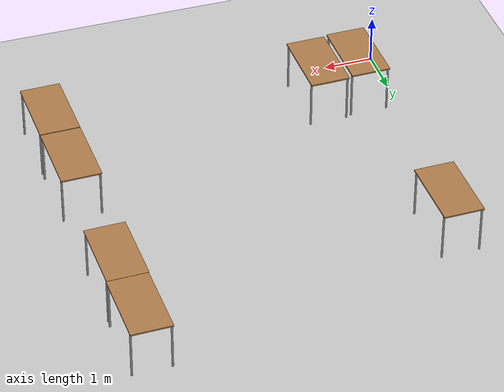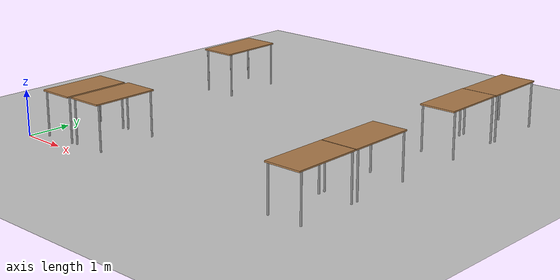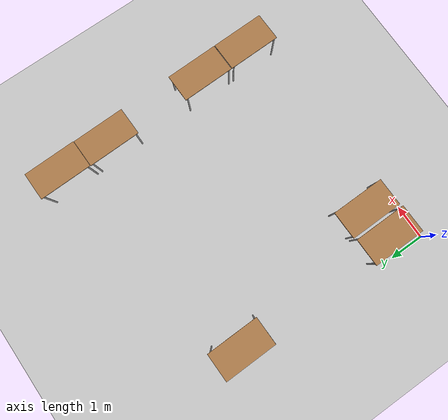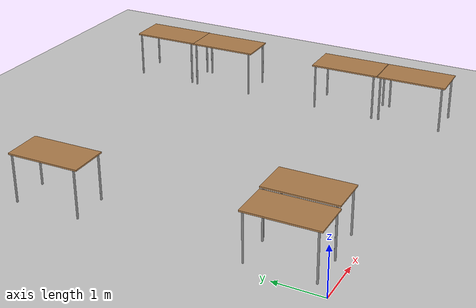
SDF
<sdf version="1.7">
 <world name="default">
  <model name="ground_plane">
   <static>1</static>
   <link name="link">
    <collision name="collision">
     <geometry><plane><normal>0 0 1</normal><size>100 100</size></plane></geometry>
     <surface>
      <contact><collide_bitmask>65535</collide_bitmask></contact>
      <friction><ode><mu>100</mu><mu2>50</mu2></ode></friction>
     </surface>
    </collision>
    <visual name="visual">
     <cast_shadows>0</cast_shadows>
     <geometry><plane><normal>0 0 1</normal><size>100 100</size></plane></geometry>
     <material>
      <script><uri>file://media/materials/scripts/gazebo.material</uri><name>Gazebo/Grey</name></script>
     </material>
    </visual>
   </link>
  </model>
  <model name="table_clone_0_clone_clone_clone_0">
   <static>1</static>
   <link name="link5">
    <collision name="surface">
     <pose>0 0 1 0 -0 0</pose>
     <geometry><box><size>1.5 0.8 0.03</size></box></geometry>
     <surface><friction><ode><mu>0.6</mu><mu2>0.6</mu2></ode></friction></surface>
    </collision>
    <visual name="visual1">
     <pose>0 0 1 0 -0 0</pose>
     <geometry><box><size>1.5 0.8 0.03</size></box></geometry>
     <material>
      <script><uri>file://media/materials/scripts/gazebo.material</uri><name>Gazebo/Wood</name></script>
     </material>
    </visual>
    <collision name="front_left_leg">
     <pose>0.68 0.38 0.5 0 -0 0</pose>
     <geometry><cylinder><radius>0.02</radius><length>1</length></cylinder></geometry>
    </collision>
    <visual name="front_left_leg">
     <pose>0.68 0.38 0.5 0 -0 0</pose>
     <geometry><cylinder><radius>0.02</radius><length>1</length></cylinder></geometry>
     <material>
      <script><uri>file://media/materials/scripts/gazebo.material</uri><name>Gazebo/Grey</name></script>
     </material>
    </visual>
    <collision name="front_right_leg">
     <pose>0.68 -0.38 0.5 0 -0 0</pose>
     <geometry><cylinder><radius>0.02</radius><length>1</length></cylinder></geometry>
    </collision>
    <visual name="front_right_leg">
     <pose>0.68 -0.38 0.5 0 -0 0</pose>
     <geometry><cylinder><radius>0.02</radius><length>1</length></cylinder></geometry>
     <material>
      <script><uri>file://media/materials/scripts/gazebo.material</uri><name>Gazebo/Grey</name></script>
     </material>
    </visual>
    <collision name="back_right_leg">
     <pose>-0.68 -0.38 0.5 0 -0 0</pose>
     <geometry><cylinder><radius>0.02</radius><length>1</length></cylinder></geometry>
    </collision>
    <visual name="back_right_leg">
     <pose>-0.68 -0.38 0.5 0 -0 0</pose>
     <geometry><cylinder><radius>0.02</radius><length>1</length></cylinder></geometry>
     <material>
      <script><uri>file://media/materials/scripts/gazebo.material</uri><name>Gazebo/Grey</name></script>
     </material>
    </visual>
    <collision name="back_left_leg">
     <pose>-0.68 0.38 0.5 0 -0 0</pose>
     <geometry><cylinder><radius>0.02</radius><length>1</length></cylinder></geometry>
    </collision>
    <visual name="back_left_leg">
     <pose>-0.68 0.38 0.5 0 -0 0</pose>
     <geometry><cylinder><radius>0.02</radius><length>1</length></cylinder></geometry>
     <material>
      <script><uri>file://media/materials/scripts/gazebo.material</uri><name>Gazebo/Grey</name></script>
     </material>
    </visual>
   </link>
   <pose>0.553868 5.6672 0 0 -0 1.58908</pose>
  </model>
  <model name="table_clone_0_clone_1">
   <static>1</static>
   <link name="link6">
    <collision name="surface">
     <pose>0 0 1 0 -0 0</pose>
     <geometry><box><size>1.5 0.8 0.03</size></box></geometry>
     <surface><friction><ode><mu>0.6</mu><mu2>0.6</mu2></ode></friction></surface>
    </collision>
    <visual name="visual1">
     <pose>0 0 1 0 -0 0</pose>
     <geometry><box><size>1.5 0.8 0.03</size></box></geometry>
     <material>
      <script><uri>file://media/materials/scripts/gazebo.material</uri><name>Gazebo/Wood</name></script>
     </material>
    </visual>
    <collision name="front_left_leg">
     <pose>0.68 0.38 0.5 0 -0 0</pose>
     <geometry><cylinder><radius>0.02</radius><length>1</length></cylinder></geometry>
    </collision>
    <visual name="front_left_leg">
     <pose>0.68 0.38 0.5 0 -0 0</pose>
     <geometry><cylinder><radius>0.02</radius><length>1</length></cylinder></geometry>
     <material>
      <script><uri>file://media/materials/scripts/gazebo.material</uri><name>Gazebo/Grey</name></script>
     </material>
    </visual>
    <collision name="front_right_leg">
     <pose>0.68 -0.38 0.5 0 -0 0</pose>
     <geometry><cylinder><radius>0.02</radius><length>1</length></cylinder></geometry>
    </collision>
    <visual name="front_right_leg">
     <pose>0.68 -0.38 0.5 0 -0 0</pose>
     <geometry><cylinder><radius>0.02</radius><length>1</length></cylinder></geometry>
     <material>
      <script><uri>file://media/materials/scripts/gazebo.material</uri><name>Gazebo/Grey</name></script>
     </material>
    </visual>
    <collision name="back_right_leg">
     <pose>-0.68 -0.38 0.5 0 -0 0</pose>
     <geometry><cylinder><radius>0.02</radius><length>1</length></cylinder></geometry>
    </collision>
    <visual name="back_right_leg">
     <pose>-0.68 -0.38 0.5 0 -0 0</pose>
     <geometry><cylinder><radius>0.02</radius><length>1</length></cylinder></geometry>
     <material>
      <script><uri>file://media/materials/scripts/gazebo.material</uri><name>Gazebo/Grey</name></script>
     </material>
    </visual>
    <collision name="back_left_leg">
     <pose>-0.68 0.38 0.5 0 -0 0</pose>
     <geometry><cylinder><radius>0.02</radius><length>1</length></cylinder></geometry>
    </collision>
    <visual name="back_left_leg">
     <pose>-0.68 0.38 0.5 0 -0 0</pose>
     <geometry><cylinder><radius>0.02</radius><length>1</length></cylinder></geometry>
     <material>
      <script><uri>file://media/materials/scripts/gazebo.material</uri><name>Gazebo/Grey</name></script>
     </material>
    </visual>
   </link>
   <pose>6.94327 6.99918 0 0 -0 1.58908</pose>
  </model>
  <model name="table_clone_0_clone_2">
   <static>1</static>
   <link name="link7">
    <collision name="surface">
     <pose>0 0 1 0 -0 0</pose>
     <geometry><box><size>1.5 0.8 0.03</size></box></geometry>
     <surface><friction><ode><mu>0.6</mu><mu2>0.6</mu2></ode></friction></surface>
    </collision>
    <visual name="visual1">
     <pose>0 0 1 0 -0 0</pose>
     <geometry><box><size>1.5 0.8 0.03</size></box></geometry>
     <material>
      <script><uri>file://media/materials/scripts/gazebo.material</uri><name>Gazebo/Wood</name></script>
     </material>
    </visual>
    <collision name="front_left_leg">
     <pose>0.68 0.38 0.5 0 -0 0</pose>
     <geometry><cylinder><radius>0.02</radius><length>1</length></cylinder></geometry>
    </collision>
    <visual name="front_left_leg">
     <pose>0.68 0.38 0.5 0 -0 0</pose>
     <geometry><cylinder><radius>0.02</radius><length>1</length></cylinder></geometry>
     <material>
      <script><uri>file://media/materials/scripts/gazebo.material</uri><name>Gazebo/Grey</name></script>
     </material>
    </visual>
    <collision name="front_right_leg">
     <pose>0.68 -0.38 0.5 0 -0 0</pose>
     <geometry><cylinder><radius>0.02</radius><length>1</length></cylinder></geometry>
    </collision>
    <visual name="front_right_leg">
     <pose>0.68 -0.38 0.5 0 -0 0</pose>
     <geometry><cylinder><radius>0.02</radius><length>1</length></cylinder></geometry>
     <material>
      <script><uri>file://media/materials/scripts/gazebo.material</uri><name>Gazebo/Grey</name></script>
     </material>
    </visual>
    <collision name="back_right_leg">
     <pose>-0.68 -0.38 0.5 0 -0 0</pose>
     <geometry><cylinder><radius>0.02</radius><length>1</length></cylinder></geometry>
    </collision>
    <visual name="back_right_leg">
     <pose>-0.68 -0.38 0.5 0 -0 0</pose>
     <geometry><cylinder><radius>0.02</radius><length>1</length></cylinder></geometry>
     <material>
      <script><uri>file://media/materials/scripts/gazebo.material</uri><name>Gazebo/Grey</name></script>
     </material>
    </visual>
    <collision name="back_left_leg">
     <pose>-0.68 0.38 0.5 0 -0 0</pose>
     <geometry><cylinder><radius>0.02</radius><length>1</length></cylinder></geometry>
    </collision>
    <visual name="back_left_leg">
     <pose>-0.68 0.38 0.5 0 -0 0</pose>
     <geometry><cylinder><radius>0.02</radius><length>1</length></cylinder></geometry>
     <material>
      <script><uri>file://media/materials/scripts/gazebo.material</uri><name>Gazebo/Grey</name></script>
     </material>
    </visual>
   </link>
   <pose>6.95814 5.4935 0 0 -0 1.58908</pose>
  </model>
  <model name="table_clone_0_clone_4">
   <static>1</static>
   <link name="link8">
    <collision name="surface">
     <pose>0 0 1 0 -0 0</pose>
     <geometry><box><size>1.5 0.8 0.03</size></box></geometry>
     <surface><friction><ode><mu>0.6</mu><mu2>0.6</mu2></ode></friction></surface>
    </collision>
    <visual name="visual1">
     <pose>0 0 1 0 -0 0</pose>
     <geometry><box><size>1.5 0.8 0.03</size></box></geometry>
     <material>
      <script><uri>file://media/materials/scripts/gazebo.material</uri><name>Gazebo/Wood</name></script>
     </material>
    </visual>
    <collision name="front_left_leg">
     <pose>0.68 0.38 0.5 0 -0 0</pose>
     <geometry><cylinder><radius>0.02</radius><length>1</length></cylinder></geometry>
    </collision>
    <visual name="front_left_leg">
     <pose>0.68 0.38 0.5 0 -0 0</pose>
     <geometry><cylinder><radius>0.02</radius><length>1</length></cylinder></geometry>
     <material>
      <script><uri>file://media/materials/scripts/gazebo.material</uri><name>Gazebo/Grey</name></script>
     </material>
    </visual>
    <collision name="front_right_leg">
     <pose>0.68 -0.38 0.5 0 -0 0</pose>
     <geometry><cylinder><radius>0.02</radius><length>1</length></cylinder></geometry>
    </collision>
    <visual name="front_right_leg">
     <pose>0.68 -0.38 0.5 0 -0 0</pose>
     <geometry><cylinder><radius>0.02</radius><length>1</length></cylinder></geometry>
     <material>
      <script><uri>file://media/materials/scripts/gazebo.material</uri><name>Gazebo/Grey</name></script>
     </material>
    </visual>
    <collision name="back_right_leg">
     <pose>-0.68 -0.38 0.5 0 -0 0</pose>
     <geometry><cylinder><radius>0.02</radius><length>1</length></cylinder></geometry>
    </collision>
    <visual name="back_right_leg">
     <pose>-0.68 -0.38 0.5 0 -0 0</pose>
     <geometry><cylinder><radius>0.02</radius><length>1</length></cylinder></geometry>
     <material>
      <script><uri>file://media/materials/scripts/gazebo.material</uri><name>Gazebo/Grey</name></script>
     </material>
    </visual>
    <collision name="back_left_leg">
     <pose>-0.68 0.38 0.5 0 -0 0</pose>
     <geometry><cylinder><radius>0.02</radius><length>1</length></cylinder></geometry>
    </collision>
    <visual name="back_left_leg">
     <pose>-0.68 0.38 0.5 0 -0 0</pose>
     <geometry><cylinder><radius>0.02</radius><length>1</length></cylinder></geometry>
     <material>
      <script><uri>file://media/materials/scripts/gazebo.material</uri><name>Gazebo/Grey</name></script>
     </material>
    </visual>
   </link>
   <pose>7.01065 2.4699 0 0 -0 1.58908</pose>
  </model>
  <model name="table_clone_0_clone_5">
   <static>1</static>
   <link name="link9">
    <collision name="surface">
     <pose>0 0 1 0 -0 0</pose>
     <geometry><box><size>1.5 0.8 0.03</size></box></geometry>
     <surface><friction><ode><mu>0.6</mu><mu2>0.6</mu2></ode></friction></surface>
    </collision>
    <visual name="visual1">
     <pose>0 0 1 0 -0 0</pose>
     <geometry><box><size>1.5 0.8 0.03</size></box></geometry>
     <material>
      <script><uri>file://media/materials/scripts/gazebo.material</uri><name>Gazebo/Wood</name></script>
     </material>
    </visual>
    <collision name="front_left_leg">
     <pose>0.68 0.38 0.5 0 -0 0</pose>
     <geometry><cylinder><radius>0.02</radius><length>1</length></cylinder></geometry>
    </collision>
    <visual name="front_left_leg">
     <pose>0.68 0.38 0.5 0 -0 0</pose>
     <geometry><cylinder><radius>0.02</radius><length>1</length></cylinder></geometry>
     <material>
      <script><uri>file://media/materials/scripts/gazebo.material</uri><name>Gazebo/Grey</name></script>
     </material>
    </visual>
    <collision name="front_right_leg">
     <pose>0.68 -0.38 0.5 0 -0 0</pose>
     <geometry><cylinder><radius>0.02</radius><length>1</length></cylinder></geometry>
    </collision>
    <visual name="front_right_leg">
     <pose>0.68 -0.38 0.5 0 -0 0</pose>
     <geometry><cylinder><radius>0.02</radius><length>1</length></cylinder></geometry>
     <material>
      <script><uri>file://media/materials/scripts/gazebo.material</uri><name>Gazebo/Grey</name></script>
     </material>
    </visual>
    <collision name="back_right_leg">
     <pose>-0.68 -0.38 0.5 0 -0 0</pose>
     <geometry><cylinder><radius>0.02</radius><length>1</length></cylinder></geometry>
    </collision>
    <visual name="back_right_leg">
     <pose>-0.68 -0.38 0.5 0 -0 0</pose>
     <geometry><cylinder><radius>0.02</radius><length>1</length></cylinder></geometry>
     <material>
      <script><uri>file://media/materials/scripts/gazebo.material</uri><name>Gazebo/Grey</name></script>
     </material>
    </visual>
    <collision name="back_left_leg">
     <pose>-0.68 0.38 0.5 0 -0 0</pose>
     <geometry><cylinder><radius>0.02</radius><length>1</length></cylinder></geometry>
    </collision>
    <visual name="back_left_leg">
     <pose>-0.68 0.38 0.5 0 -0 0</pose>
     <geometry><cylinder><radius>0.02</radius><length>1</length></cylinder></geometry>
     <material>
      <script><uri>file://media/materials/scripts/gazebo.material</uri><name>Gazebo/Grey</name></script>
     </material>
    </visual>
   </link>
   <pose>7.03829 0.952201 0 0 -0 1.58908</pose>
  </model>
  <model name="table_clone_2_clone_clone_clone">
   <static>1</static>
   <link name="link59">
    <collision name="surface">
     <pose>0 0 1 0 -0 0</pose>
     <geometry><box><size>1.5 0.8 0.03</size></box></geometry>
     <surface><friction><ode><mu>0.6</mu><mu2>0.6</mu2></ode></friction></surface>
    </collision>
    <visual name="visual1">
     <pose>0 0 1 0 -0 0</pose>
     <geometry><box><size>1.5 0.8 0.03</size></box></geometry>
     <material>
      <script><uri>file://media/materials/scripts/gazebo.material</uri><name>Gazebo/Wood</name></script>
     </material>
    </visual>
    <collision name="front_left_leg">
     <pose>0.68 0.38 0.5 0 -0 0</pose>
     <geometry><cylinder><radius>0.02</radius><length>1</length></cylinder></geometry>
    </collision>
    <visual name="front_left_leg">
     <pose>0.68 0.38 0.5 0 -0 0</pose>
     <geometry><cylinder><radius>0.02</radius><length>1</length></cylinder></geometry>
     <material>
      <script><uri>file://media/materials/scripts/gazebo.material</uri><name>Gazebo/Grey</name></script>
     </material>
    </visual>
    <collision name="front_right_leg">
     <pose>0.68 -0.38 0.5 0 -0 0</pose>
     <geometry><cylinder><radius>0.02</radius><length>1</length></cylinder></geometry>
    </collision>
    <visual name="front_right_leg">
     <pose>0.68 -0.38 0.5 0 -0 0</pose>
     <geometry><cylinder><radius>0.02</radius><length>1</length></cylinder></geometry>
     <material>
      <script><uri>file://media/materials/scripts/gazebo.material</uri><name>Gazebo/Grey</name></script>
     </material>
    </visual>
    <collision name="back_right_leg">
     <pose>-0.68 -0.38 0.5 0 -0 0</pose>
     <geometry><cylinder><radius>0.02</radius><length>1</length></cylinder></geometry>
    </collision>
    <visual name="back_right_leg">
     <pose>-0.68 -0.38 0.5 0 -0 0</pose>
     <geometry><cylinder><radius>0.02</radius><length>1</length></cylinder></geometry>
     <material>
      <script><uri>file://media/materials/scripts/gazebo.material</uri><name>Gazebo/Grey</name></script>
     </material>
    </visual>
    <collision name="back_left_leg">
     <pose>-0.68 0.38 0.5 0 -0 0</pose>
     <geometry><cylinder><radius>0.02</radius><length>1</length></cylinder></geometry>
    </collision>
    <visual name="back_left_leg">
     <pose>-0.68 0.38 0.5 0 -0 0</pose>
     <geometry><cylinder><radius>0.02</radius><length>1</length></cylinder></geometry>
     <material>
      <script><uri>file://media/materials/scripts/gazebo.material</uri><name>Gazebo/Grey</name></script>
     </material>
    </visual>
   </link>
   <pose>0.664986 0.980658 0 0 0 -1.55798</pose>
  </model>
  <model name="cardboard_box_0">
   <pose>3.96847 0.977565 -1.0418e+07 0 -0 0</pose>
   <link name="link63">
    <pose>3.96847 0.977565 0.149 0 -0 0</pose>
    <inertial>
     <inertia><ixx>1</ixx><ixy>0</ixy><ixz>0</ixz><iyy>1</iyy><iyz>0</iyz><izz>1</izz></inertia>
     <mass>1</mass>
    </inertial>
    <velocity>0 0 0 0 -0 0</velocity>
    <acceleration>0 -1.9e-05 0 0.000128 2e-06 0</acceleration>
    <wrench>1e-06 -3.8e-05 1e-06 0 -0 0</wrench>
   </link>
   <scale>1 1 1</scale>
  </model>
  <model name="table_clone_2_clone_clone_clone_clone">
   <static>1</static>
   <link name="link67">
    <collision name="surface">
     <pose>0 0 1 0 -0 0</pose>
     <geometry><box><size>1.5 0.8 0.03</size></box></geometry>
     <surface><friction><ode><mu>0.6</mu><mu2>0.6</mu2></ode></friction></surface>
    </collision>
    <visual name="visual1">
     <pose>0 0 1 0 -0 0</pose>
     <geometry><box><size>1.5 0.8 0.03</size></box></geometry>
     <material>
      <script><uri>file://media/materials/scripts/gazebo.material</uri><name>Gazebo/Wood</name></script>
     </material>
    </visual>
    <collision name="front_left_leg">
     <pose>0.68 0.38 0.5 0 -0 0</pose>
     <geometry><cylinder><radius>0.02</radius><length>1</length></cylinder></geometry>
    </collision>
    <visual name="front_left_leg">
     <pose>0.68 0.38 0.5 0 -0 0</pose>
     <geometry><cylinder><radius>0.02</radius><length>1</length></cylinder></geometry>
     <material>
      <script><uri>file://media/materials/scripts/gazebo.material</uri><name>Gazebo/Grey</name></script>
     </material>
    </visual>
    <collision name="front_right_leg">
     <pose>0.68 -0.38 0.5 0 -0 0</pose>
     <geometry><cylinder><radius>0.02</radius><length>1</length></cylinder></geometry>
    </collision>
    <visual name="front_right_leg">
     <pose>0.68 -0.38 0.5 0 -0 0</pose>
     <geometry><cylinder><radius>0.02</radius><length>1</length></cylinder></geometry>
     <material>
      <script><uri>file://media/materials/scripts/gazebo.material</uri><name>Gazebo/Grey</name></script>
     </material>
    </visual>
    <collision name="back_right_leg">
     <pose>-0.68 -0.38 0.5 0 -0 0</pose>
     <geometry><cylinder><radius>0.02</radius><length>1</length></cylinder></geometry>
    </collision>
    <visual name="back_right_leg">
     <pose>-0.68 -0.38 0.5 0 -0 0</pose>
     <geometry><cylinder><radius>0.02</radius><length>1</length></cylinder></geometry>
     <material>
      <script><uri>file://media/materials/scripts/gazebo.material</uri><name>Gazebo/Grey</name></script>
     </material>
    </visual>
    <collision name="back_left_leg">
     <pose>-0.68 0.38 0.5 0 -0 0</pose>
     <geometry><cylinder><radius>0.02</radius><length>1</length></cylinder></geometry>
    </collision>
    <visual name="back_left_leg">
     <pose>-0.68 0.38 0.5 0 -0 0</pose>
     <geometry><cylinder><radius>0.02</radius><length>1</length></cylinder></geometry>
     <material>
      <script><uri>file://media/materials/scripts/gazebo.material</uri><name>Gazebo/Grey</name></script>
     </material>
    </visual>
   </link>
   <pose>1.53882 1.03634 0 0 0 -1.55798</pose>
  </model>
 </world>
</sdf>
